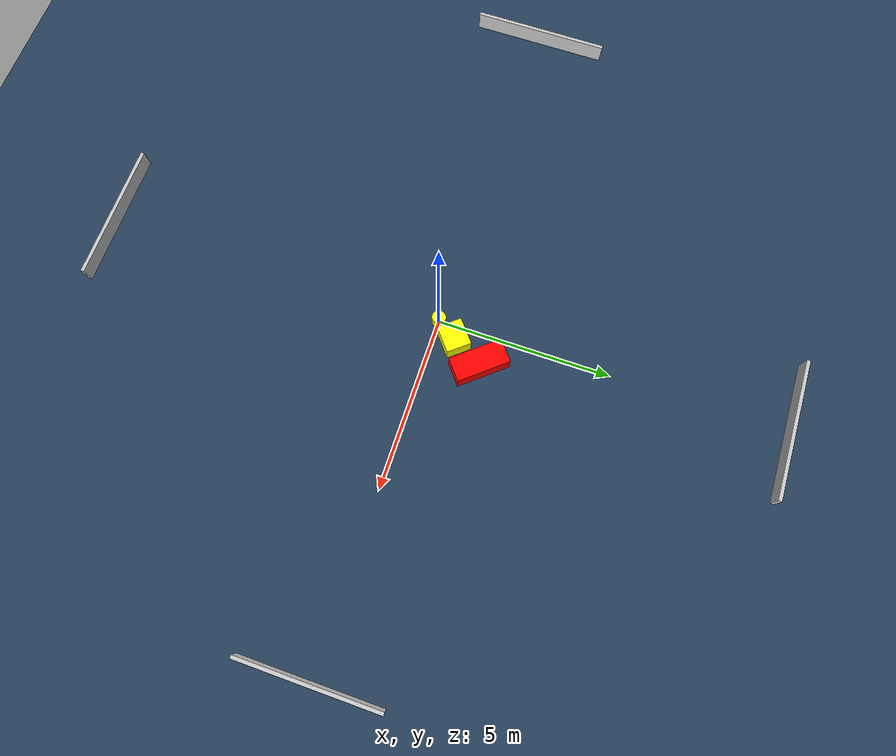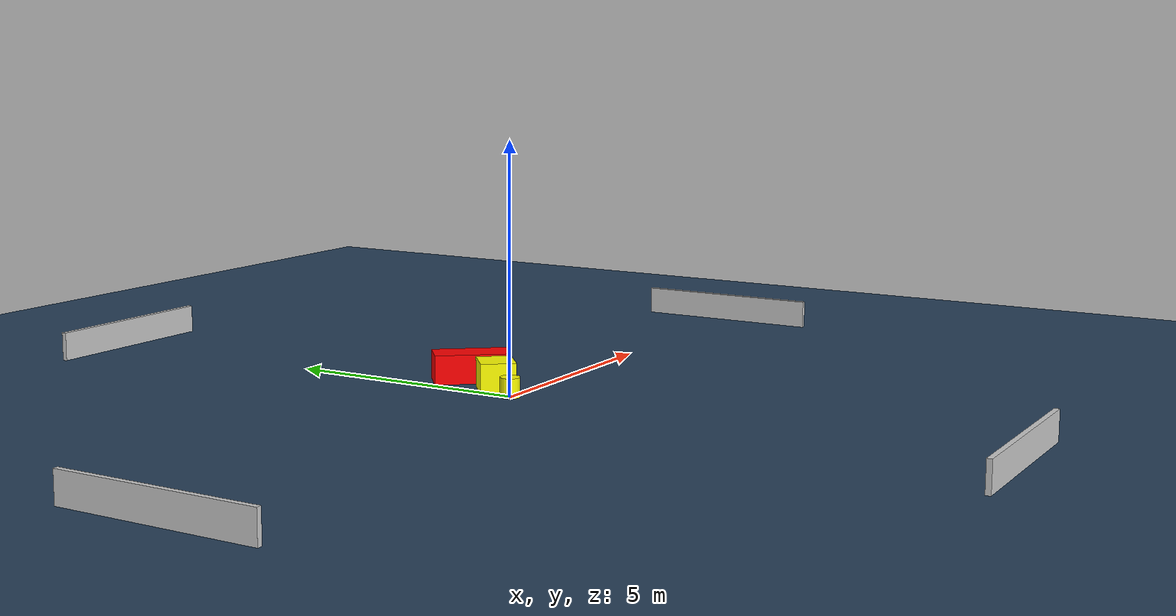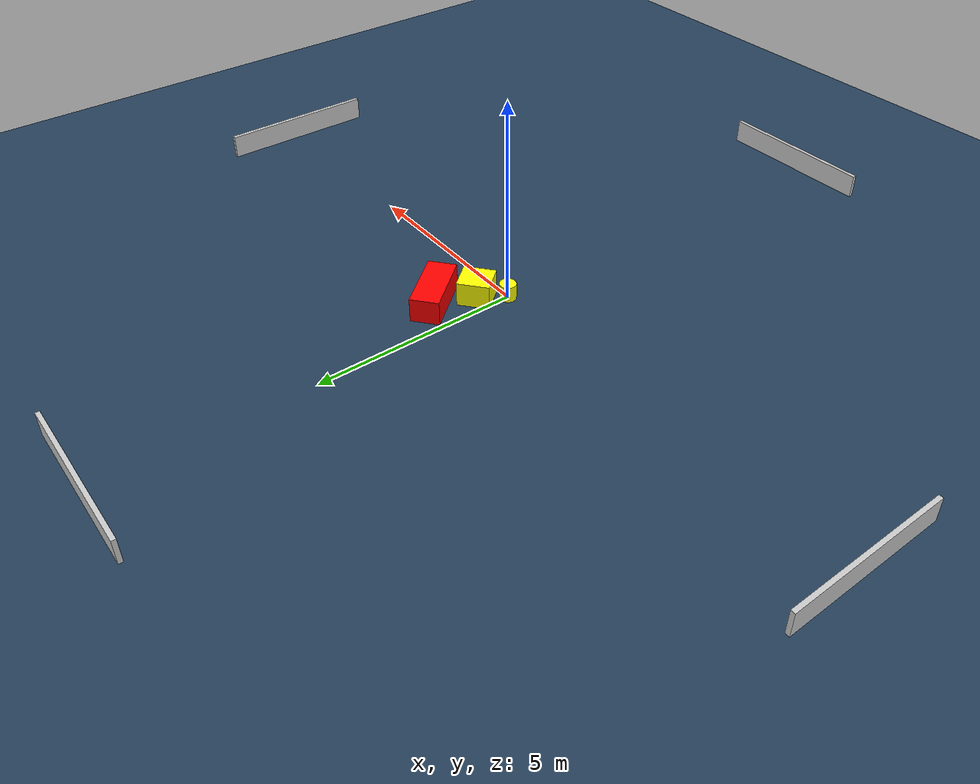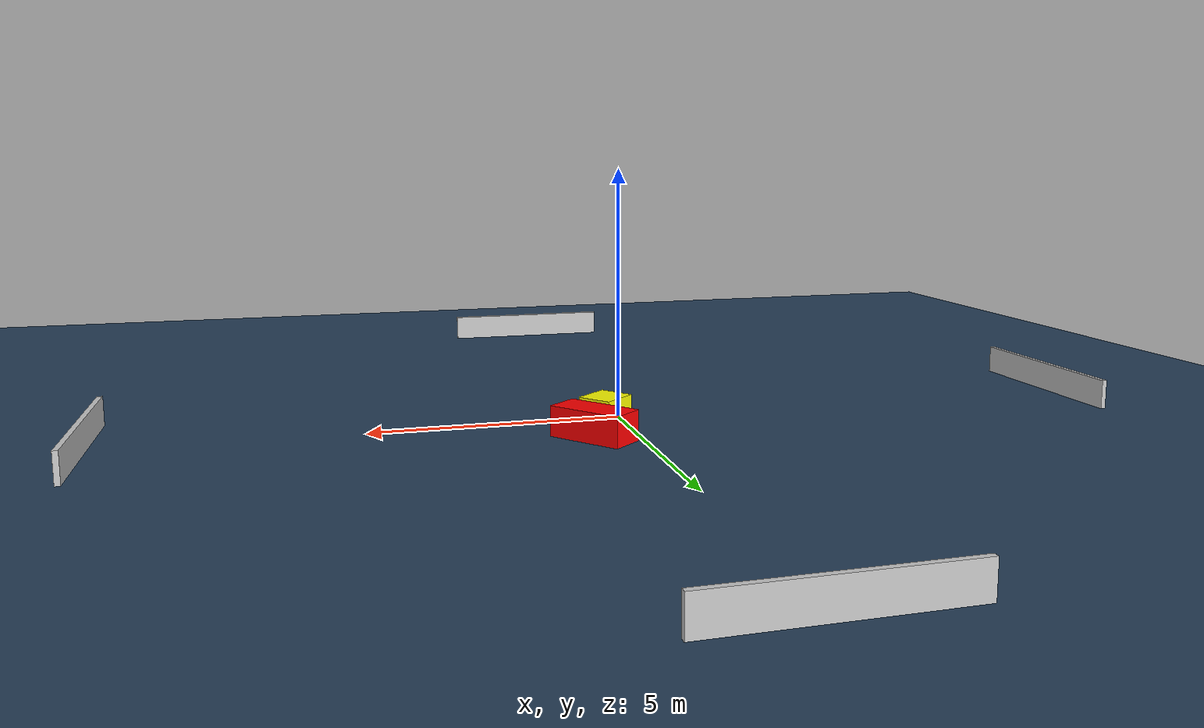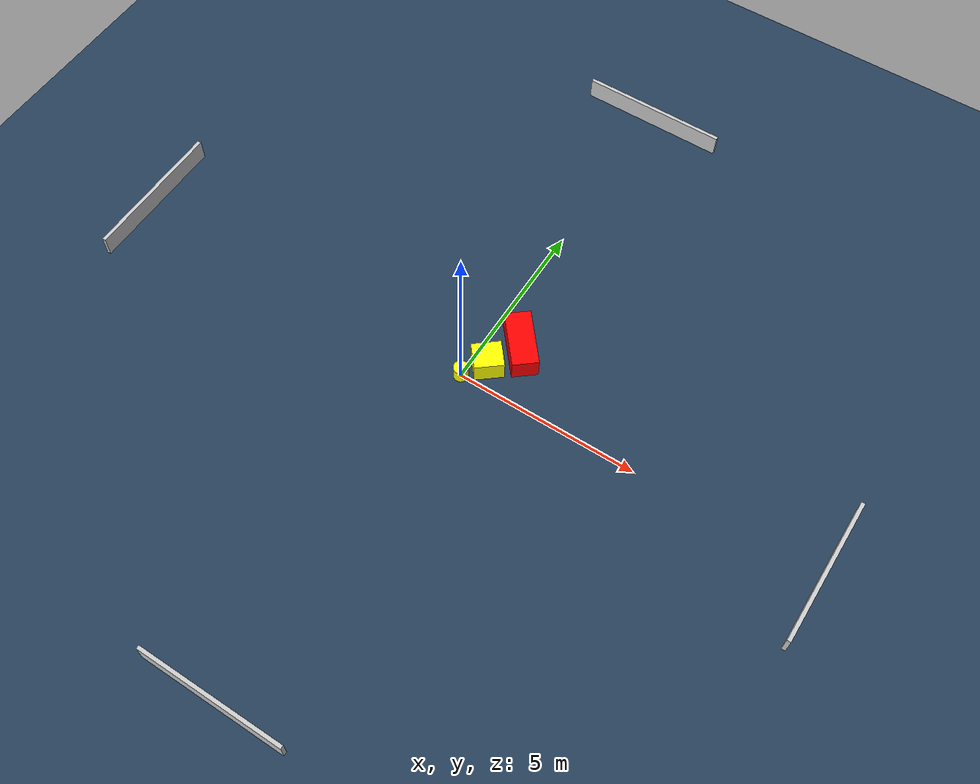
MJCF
<?xml version="1.0" ?>
<mujoco model="generated_environment">
  <option timestep="0.01" integrator="RK4" cone="elliptic"/>
  <default>
    <geom density="1"/>
  </default>
  <asset>
    <texture builtin="gradient" height="3072" name="skybox" rgb1="0.3 0.5 0.7" rgb2="0 0 0" type="skybox" width="512"/>
    <texture builtin="checker" height="300" name="groundplane" rgb1="0.2 0.3 0.4" rgb2="0.1 0.2 0.3" type="2d" width="300"/>
    <material name="groundplane" reflectance="0.2" texrepeat="5 5" texture="groundplane"/>
  </asset>
  <worldbody>
    <light dir="0 0 -1" directional="true" pos="0 0 1.5"/>
    <geom condim="3" friction="0.5 0.005 0.001" material="groundplane" name="floor" pos="0 0 0" size="0 0 0.05" type="plane"/>
    <body name="walls">
      <geom name="wall_1" condim="4" pos="-10.0 0.0 0.3" rgba="0.800000011920929 0.800000011920929 0.800000011920929 1.0" size="0.05 2.0 0.3" type="box"/>
      <geom name="wall_2" condim="4" pos="10.0 0.0 0.3" rgba="0.800000011920929 0.800000011920929 0.800000011920929 1.0" size="0.05 2.0 0.3" type="box"/>
      <geom name="wall_3" condim="4" pos="0.0 -10.0 0.3" rgba="0.800000011920929 0.800000011920929 0.800000011920929 1.0" size="2.0 0.05 0.3" type="box"/>
      <geom name="wall_4" condim="4" pos="0.0 10.0 0.3" rgba="0.800000011920929 0.800000011920929 0.800000011920929 1.0" size="2.0 0.05 0.3" type="box"/>
    </body>
    <body name="robot">
      <joint name="joint_x" type="slide" pos="0 0 0" axis="1 0 0"/>
      <joint name="joint_y" type="slide" pos="0 0 0" axis="0 1 0"/>
      <geom name="robot" type="cylinder" pos="0.0 0.0 0.2" size="0.2 0.2 0.0" mass="5.0" friction="1.0 0.005 0.0001" condim="4" rgba="1.0 1.0 0.0 1.0"/>
    </body>
    <body name="obstacle_1_movable">
      <geom name="obstacle_1_movable" condim="4" pos="0.42286979979769757 0.5840987536617767 0.3" euler="0 0 309.5618651480545" friction="0.0 0.005 0.001" rgba="1.0 1.0 0.0 1.0" size="0.3577422582118015 0.38926013662330794 0.3" type="box" mass="0.1"/>
      <joint type="free"/>
    </body>
    <body name="obstacle_2_static">
      <geom name="obstacle_2_static" condim="4" pos="0.8729785289031671 1.4677231353727103 0.3" euler="0 0 309.6920894674826" friction="0.0 0.005 0.001" rgba="1.0 0.0 0.0 1.0" size="0.7733629009248975 0.3480849884509824 0.3" type="box"/>
    </body>
  </worldbody>
  <actuator>
    <motor name="actuator_x" joint="joint_x" gear="1" ctrlrange="-1 1"/>
    <motor name="actuator_y" joint="joint_y" gear="1" ctrlrange="-1 1"/>
  </actuator>
</mujoco>
